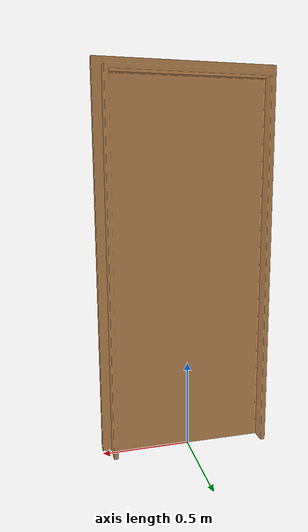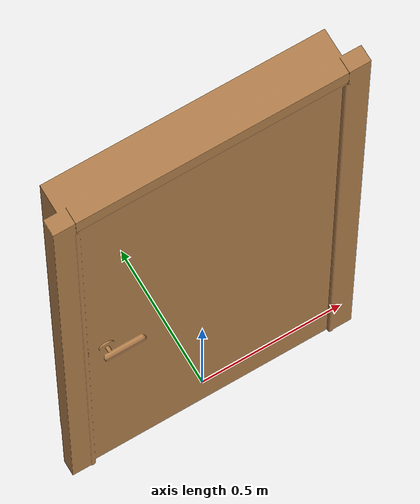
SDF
<?xml version='1.0'?>
<sdf version='1.4'>
<model name='grasp_door'>
<pose>0 0 0.0145 0 0 0</pose>
<link name='link'>
  <inertial>
    <pose>0 0 0.03 0 -0 0</pose>
    <mass>1</mass>
    <inertia>
      <ixx>1</ixx>
      <ixy>0</ixy>
      <ixz>0</ixz>
      <iyy>1</iyy>
      <iyz>0</iyz>
      <izz>1</izz>
    </inertia>
  </inertial>
  <collision name='collision'>
    <geometry>
      <box>
        <size>1 0.2 2</size>
      </box>
    </geometry>
    <max_contacts>10</max_contacts>
    <surface>
      <bounce/>
      <friction>
        <ode/>
      </friction>
      <contact>
        <ode/>
      </contact>
    </surface>
  </collision>
  <visual name='visual'>
    <geometry>
      <mesh>
        <uri>model://grasp_door/meshes/grasp_door.dae</uri>
      </mesh>
    </geometry>
    <material>
      <script>
        <uri>file://media/materials/scripts/gazebo.material</uri>
        <name>Gazebo/Wood</name>
      </script>
    </material>
  </visual>
  <velocity_decay>
    <linear>0</linear>
    <angular>0</angular>
  </velocity_decay>
  <self_collide>0</self_collide>
  <kinematic>0</kinematic>
  <gravity>1</gravity>
</link>
<static>1</static>
</model>
</sdf>
